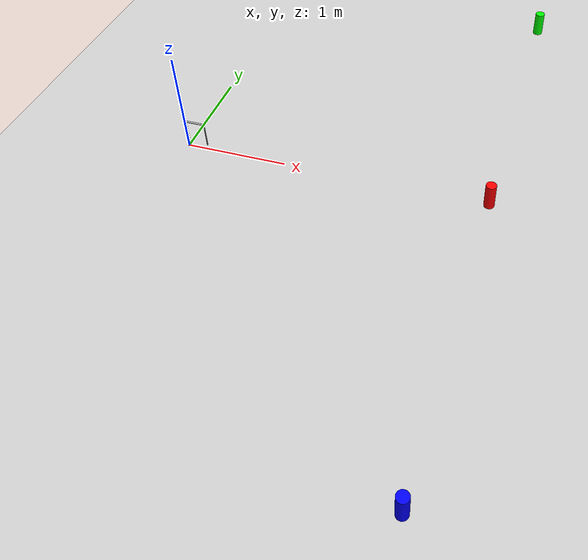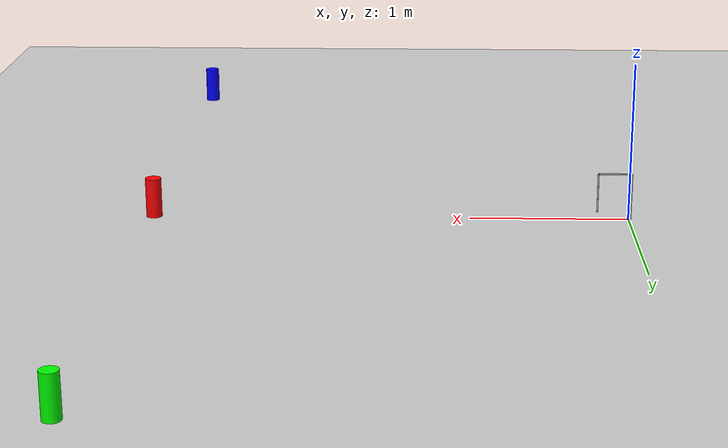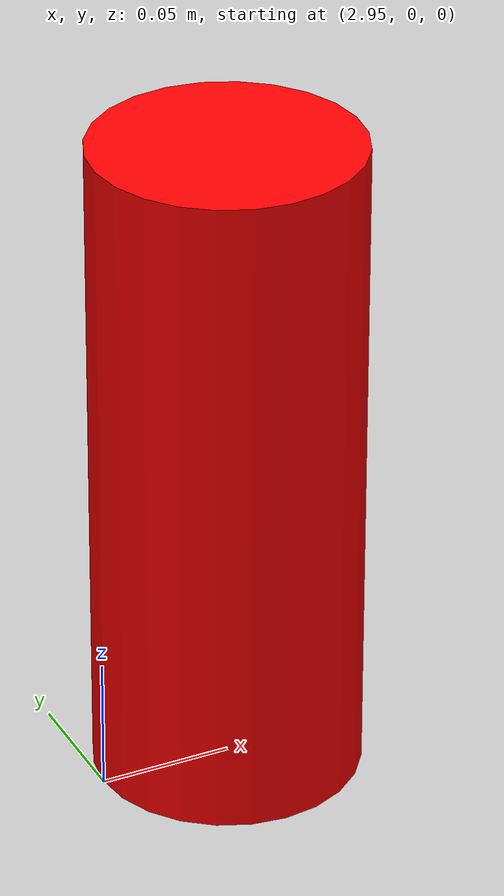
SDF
<?xml version="1.0" ?>
<sdf version="1.5">
  <world name="default">
    <!-- Ground -->
    <include>
      <uri>model://ground_plane</uri>
    </include>
    <!-- A global light source -->
    <include>
      <uri>model://sun</uri>
    </include>

    <physics type='ode'>
      <max_step_size>0.001</max_step_size>
      <real_time_factor>1</real_time_factor>
      <real_time_update_rate>1000</real_time_update_rate>
      <gravity>0 0 -9.8</gravity>
    </physics>

    <!-- Rotary Inverted Pendulum -->
    <model name="rip">
      <link name='base'>
        <pose>0 0 0 0 0 0</pose>
        <visual name="visual">
          <pose>0 0 .148 0 0 0</pose>
          <geometry>
            <cylinder>
              <radius>0.015</radius>
              <length>.297</length>
            </cylinder>
          </geometry>
        </visual>
      </link>

      <joint name="base_joint" type="fixed">
        <parent>world</parent>
        <child>base</child>
        <pose>0 0 0 0 0 0</pose>
      </joint>

      <link name='arm'>
        <pose>0 0 .3 0 0 0</pose>
        <gravity>true</gravity>
        <inertial>
          <mass>0.0395</mass>
          <inertia>
            <ixx>.000125</ixx>
            <iyy>.000125</iyy>
            <izz>.0000125</izz>
            <ixy>0</ixy>
            <ixz>0</ixz>
            <iyz>0</iyz>
          </inertia>
          <pose>.09 0 0 0 0 0</pose>
        </inertial>
        <visual name="visual">
          <pose>.095 0 0 0 0 0</pose>
          <geometry>
            <box>
              <size>.200 .020 .005</size>
            </box>
          </geometry>
        </visual>
      </link>

      <joint name="joint_1" type="revolute">
        <parent>base</parent>
        <child>arm</child>
        <axis>
          <xyz>0 0 1</xyz>
          <dynamics>
            <damping>0.00001</damping>
            <friction>0.000000</friction>
          </dynamics>
        </axis>
      </joint>

      <link name='pendulum'>
        <pose>.2 0 .3 0 0 0</pose>
        <gravity>true</gravity>
        <inertial>
          <mass>0.192</mass>
          <inertia>
            <ixx>.000866</ixx>
            <iyy>.000866</iyy>
            <izz>.0000866</izz>
            <ixy>0</ixy>
            <ixz>0</ixz>
            <iyz>0</iyz>
          </inertia>
          <pose>0 0 -.128 0 0 0</pose>
        </inertial>
        <visual name="visual">
          <pose>0 0 -.125 0 0 0</pose>
          <geometry>
            <cylinder>
             <radius>.005</radius>
             <length>.250</length>
            </cylinder>
          </geometry>
        </visual>
        <sensor name="camera" type="camera">
          <pose>0 0 -.250 0 0 0</pose>
          <camera>
            <horizontal_fov>1.047</horizontal_fov>
            <image>
              <width>320</width>
              <height>240</height>
            </image>
            <clip>
              <near>0.1</near>
              <far>100</far>
            </clip>
          </camera>
          <always_on>1</always_on>
          <update_rate>30</update_rate>
          <visualize>false</visualize>
        </sensor>
      </link>

      <joint name="joint_2" type="revolute">
        <parent>arm</parent>
        <child>pendulum</child>
        <axis>
          <xyz>1 0 0</xyz>
          <dynamics>
            <damping>0.00001</damping>
            <friction>0.000000</friction>
          </dynamics>
        </axis>
      </joint>
    </model>

    <!-- Put in some cylinders so the camera has something to look at -->
    <model name="post">
       <static>true</static>
       <link name="post1">
         <visual name="visual">
           <pose>3 0 0.125 0 0 0</pose>
           <geometry>
             <cylinder>
               <radius>0.05</radius>
               <length>0.25</length>
             </cylinder>
           </geometry>
           <material>
             <ambient>1 0 0 0</ambient>
           </material>
         </visual>
       </link>
       <link name="post2">
         <visual name="visual">
           <pose>3 3 0.125 0 0 0</pose>
           <geometry>
             <cylinder>
               <radius>0.05</radius>
               <length>0.25</length>
             </cylinder>
           </geometry>
           <material>
             <ambient>0 1 0 0</ambient>
           </material>
         </visual>
       </link>
       <link name="post3">
         <visual name="visual">
           <pose>3.0 -3.0 0.125 0 0 0</pose>
           <geometry>
             <cylinder>
               <radius>0.05</radius>
               <length>0.25</length>
             </cylinder>
           </geometry>
           <material>
             <ambient>0 0 1 0</ambient>
           </material>
         </visual>
       </link>
    </model>

  </world>
</sdf>
